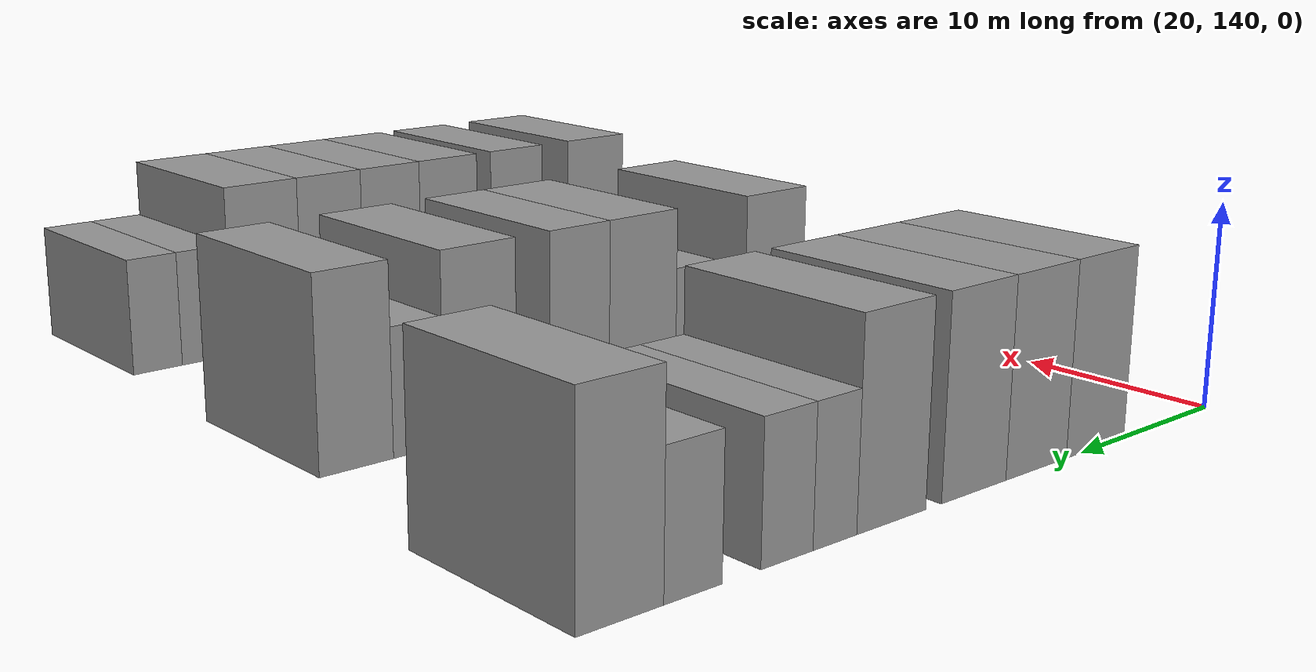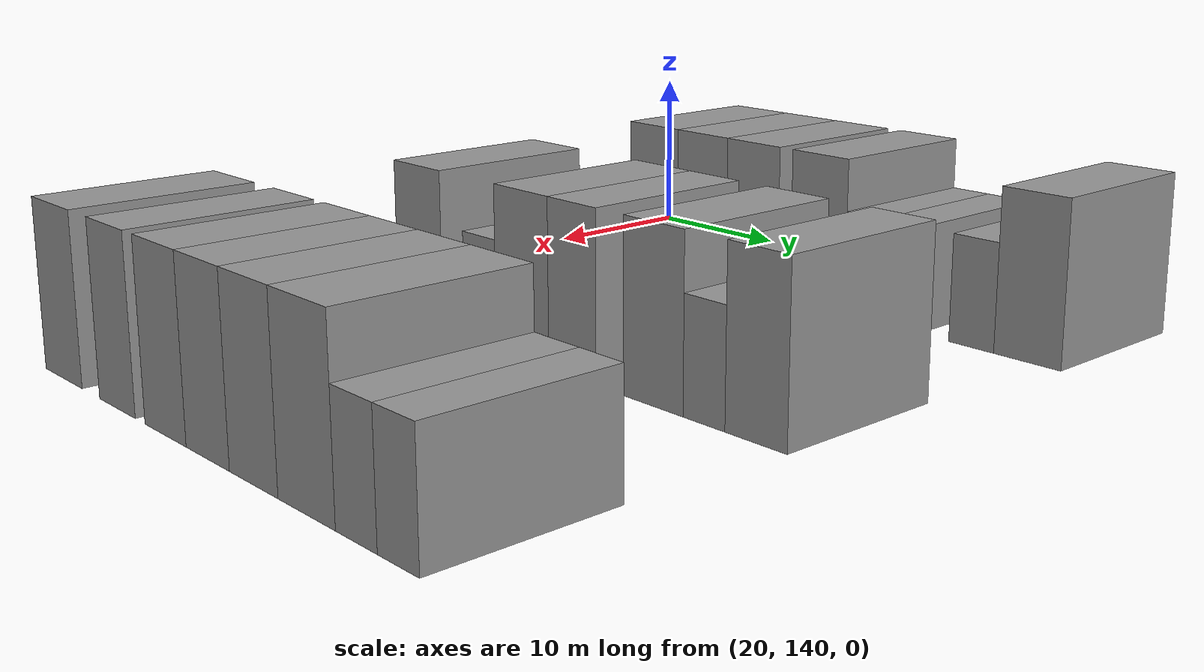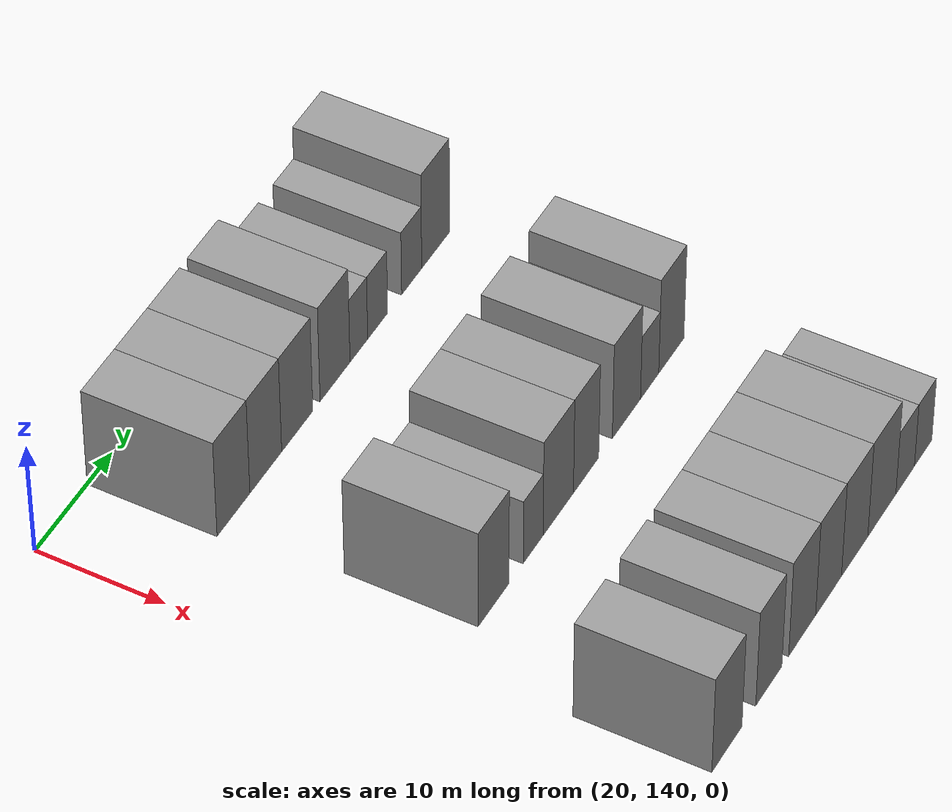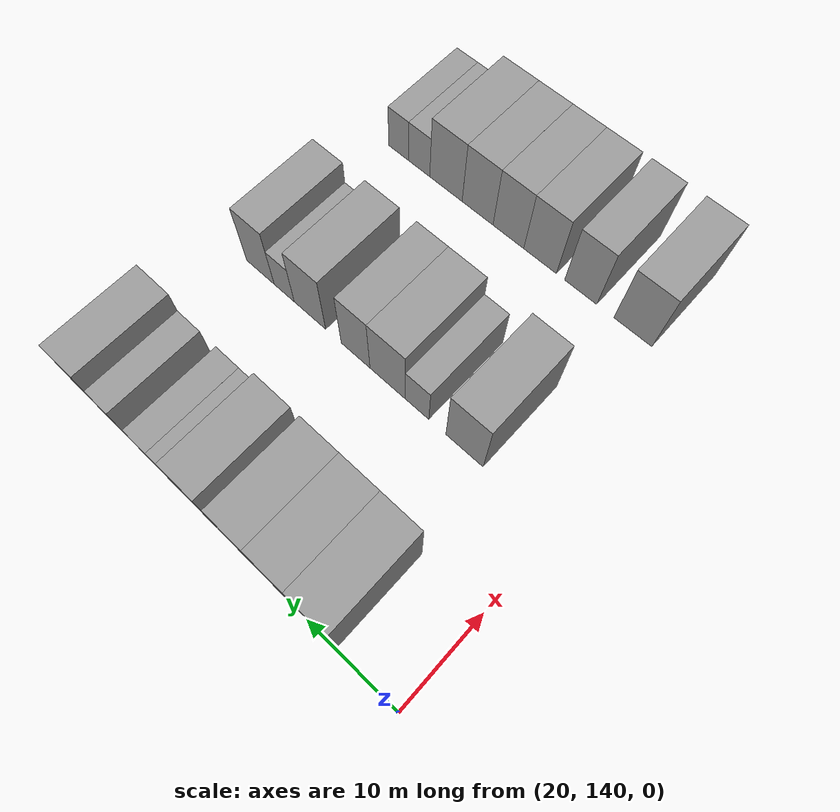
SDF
<sdf version="1.6">
 <world name="default">
  <model name="building_105">
   <static>1</static>
   <pose>25.0000 148.9333 0 0.000000 0.000000 0.000000</pose>
   <link name="link">
    <pose>0 0 4.50 0 0 0</pose>
    <collision name="collision"><geometry><box><size>10.0000 4.3901 9.0000</size></box></geometry></collision>
    <visual name="visual">
     <cast_shadows>0</cast_shadows>
     <geometry><box><size>10.0000 4.3901 9.0000</size></box></geometry>
     <material>
      <script>
       <uri>model://grey_wall/materials/scripts</uri>
       <uri>model://grey_wall/materials/textures</uri>
       <name>vrc/grey_wall</name>
      </script>
     </material>
    </visual>
   </link>
  </model>
  <model name="building_106">
   <static>1</static>
   <pose>25.0000 153.2803 0 0.000000 0.000000 0.000000</pose>
   <link name="link">
    <pose>0 0 4.50 0 0 0</pose>
    <collision name="collision"><geometry><box><size>10.0000 4.3039 9.0000</size></box></geometry></collision>
    <visual name="visual">
     <cast_shadows>0</cast_shadows>
     <geometry><box><size>10.0000 4.3039 9.0000</size></box></geometry>
     <material>
      <script>
       <uri>model://grey_wall/materials/scripts</uri>
       <uri>model://grey_wall/materials/textures</uri>
       <name>vrc/grey_wall</name>
      </script>
     </material>
    </visual>
   </link>
  </model>
  <model name="building_107">
   <static>1</static>
   <pose>25.0000 157.5645 0 0.000000 0.000000 0.000000</pose>
   <link name="link">
    <pose>0 0 4.50 0 0 0</pose>
    <collision name="collision"><geometry><box><size>10.0000 4.2645 9.0000</size></box></geometry></collision>
    <visual name="visual">
     <cast_shadows>0</cast_shadows>
     <geometry><box><size>10.0000 4.2645 9.0000</size></box></geometry>
     <material>
      <script>
       <uri>model://grey_wall/materials/scripts</uri>
       <uri>model://grey_wall/materials/textures</uri>
       <name>vrc/grey_wall</name>
      </script>
     </material>
    </visual>
   </link>
  </model>
  <model name="building_108">
   <static>1</static>
   <pose>25.0000 162.7860 0 0.000000 0.000000 0.000000</pose>
   <link name="link">
    <pose>0 0 4.50 0 0 0</pose>
    <collision name="collision"><geometry><box><size>10.0000 4.1785 9.0000</size></box></geometry></collision>
    <visual name="visual">
     <cast_shadows>0</cast_shadows>
     <geometry><box><size>10.0000 4.1785 9.0000</size></box></geometry>
     <material>
      <script>
       <uri>model://grey_wall/materials/scripts</uri>
       <uri>model://grey_wall/materials/textures</uri>
       <name>vrc/grey_wall</name>
      </script>
     </material>
    </visual>
   </link>
  </model>
  <model name="building_109">
   <static>1</static>
   <pose>25.0000 166.1207 0 0.000000 0.000000 0.000000</pose>
   <link name="link">
    <pose>0 0 3.00 0 0 0</pose>
    <collision name="collision"><geometry><box><size>10.0000 2.4908 6.0000</size></box></geometry></collision>
    <visual name="visual">
     <cast_shadows>0</cast_shadows>
     <geometry><box><size>10.0000 2.4908 6.0000</size></box></geometry>
     <material>
      <script>
       <uri>model://grey_wall/materials/scripts</uri>
       <uri>model://grey_wall/materials/textures</uri>
       <name>vrc/grey_wall</name>
      </script>
     </material>
    </visual>
   </link>
  </model>
  <model name="building_110">
   <static>1</static>
   <pose>25.0000 168.7797 0 0.000000 0.000000 0.000000</pose>
   <link name="link">
    <pose>0 0 3.00 0 0 0</pose>
    <collision name="collision"><geometry><box><size>10.0000 2.8271 6.0000</size></box></geometry></collision>
    <visual name="visual">
     <cast_shadows>0</cast_shadows>
     <geometry><box><size>10.0000 2.8271 6.0000</size></box></geometry>
     <material>
      <script>
       <uri>model://grey_wall/materials/scripts</uri>
       <uri>model://grey_wall/materials/textures</uri>
       <name>vrc/grey_wall</name>
      </script>
     </material>
    </visual>
   </link>
  </model>
  <model name="building_111">
   <static>1</static>
   <pose>25.0000 173.6369 0 0.000000 0.000000 0.000000</pose>
   <link name="link">
    <pose>0 0 3.00 0 0 0</pose>
    <collision name="collision"><geometry><box><size>10.0000 2.8874 6.0000</size></box></geometry></collision>
    <visual name="visual">
     <cast_shadows>0</cast_shadows>
     <geometry><box><size>10.0000 2.8874 6.0000</size></box></geometry>
     <material>
      <script>
       <uri>model://grey_wall/materials/scripts</uri>
       <uri>model://grey_wall/materials/textures</uri>
       <name>vrc/grey_wall</name>
      </script>
     </material>
    </visual>
   </link>
  </model>
  <model name="building_112">
   <static>1</static>
   <pose>25.0000 177.1193 0 0.000000 0.000000 0.000000</pose>
   <link name="link">
    <pose>0 0 4.50 0 0 0</pose>
    <collision name="collision"><geometry><box><size>10.0000 4.0774 9.0000</size></box></geometry></collision>
    <visual name="visual">
     <cast_shadows>0</cast_shadows>
     <geometry><box><size>10.0000 4.0774 9.0000</size></box></geometry>
     <material>
      <script>
       <uri>model://grey_wall/materials/scripts</uri>
       <uri>model://grey_wall/materials/textures</uri>
       <name>vrc/grey_wall</name>
      </script>
     </material>
    </visual>
   </link>
  </model>
  <model name="building_215">
   <static>1</static>
   <pose>44.0000 150.0126 0 0.000000 0.000000 0.000000</pose>
   <link name="link">
    <pose>0 0 4.50 0 0 0</pose>
    <collision name="collision"><geometry><box><size>10.0000 4.2839 9.0000</size></box></geometry></collision>
    <visual name="visual">
     <cast_shadows>0</cast_shadows>
     <geometry><box><size>10.0000 4.2839 9.0000</size></box></geometry>
     <material>
      <script>
       <uri>model://grey_wall/materials/scripts</uri>
       <uri>model://grey_wall/materials/textures</uri>
       <name>vrc/grey_wall</name>
      </script>
     </material>
    </visual>
   </link>
  </model>
  <model name="building_216">
   <static>1</static>
   <pose>44.0000 155.5559 0 0.000000 0.000000 0.000000</pose>
   <link name="link">
    <pose>0 0 3.00 0 0 0</pose>
    <collision name="collision"><geometry><box><size>10.0000 2.8028 6.0000</size></box></geometry></collision>
    <visual name="visual">
     <cast_shadows>0</cast_shadows>
     <geometry><box><size>10.0000 2.8028 6.0000</size></box></geometry>
     <material>
      <script>
       <uri>model://grey_wall/materials/scripts</uri>
       <uri>model://grey_wall/materials/textures</uri>
       <name>vrc/grey_wall</name>
      </script>
     </material>
    </visual>
   </link>
  </model>
  <model name="building_217">
   <static>1</static>
   <pose>44.0000 159.1322 0 0.000000 0.000000 0.000000</pose>
   <link name="link">
    <pose>0 0 4.50 0 0 0</pose>
    <collision name="collision"><geometry><box><size>10.0000 4.3497 9.0000</size></box></geometry></collision>
    <visual name="visual">
     <cast_shadows>0</cast_shadows>
     <geometry><box><size>10.0000 4.3497 9.0000</size></box></geometry>
     <material>
      <script>
       <uri>model://grey_wall/materials/scripts</uri>
       <uri>model://grey_wall/materials/textures</uri>
       <name>vrc/grey_wall</name>
      </script>
     </material>
    </visual>
   </link>
  </model>
  <model name="building_218">
   <static>1</static>
   <pose>44.0000 163.1326 0 0.000000 0.000000 0.000000</pose>
   <link name="link">
    <pose>0 0 4.50 0 0 0</pose>
    <collision name="collision"><geometry><box><size>10.0000 3.6511 9.0000</size></box></geometry></collision>
    <visual name="visual">
     <cast_shadows>0</cast_shadows>
     <geometry><box><size>10.0000 3.6511 9.0000</size></box></geometry>
     <material>
      <script>
       <uri>model://grey_wall/materials/scripts</uri>
       <uri>model://grey_wall/materials/textures</uri>
       <name>vrc/grey_wall</name>
      </script>
     </material>
    </visual>
   </link>
  </model>
  <model name="building_219">
   <static>1</static>
   <pose>44.0000 169.0336 0 0.000000 0.000000 0.000000</pose>
   <link name="link">
    <pose>0 0 4.50 0 0 0</pose>
    <collision name="collision"><geometry><box><size>10.0000 4.1509 9.0000</size></box></geometry></collision>
    <visual name="visual">
     <cast_shadows>0</cast_shadows>
     <geometry><box><size>10.0000 4.1509 9.0000</size></box></geometry>
     <material>
      <script>
       <uri>model://grey_wall/materials/scripts</uri>
       <uri>model://grey_wall/materials/textures</uri>
       <name>vrc/grey_wall</name>
      </script>
     </material>
    </visual>
   </link>
  </model>
  <model name="building_220">
   <static>1</static>
   <pose>44.0000 172.4661 0 0.000000 0.000000 0.000000</pose>
   <link name="link">
    <pose>0 0 3.00 0 0 0</pose>
    <collision name="collision"><geometry><box><size>10.0000 2.7141 6.0000</size></box></geometry></collision>
    <visual name="visual">
     <cast_shadows>0</cast_shadows>
     <geometry><box><size>10.0000 2.7141 6.0000</size></box></geometry>
     <material>
      <script>
       <uri>model://grey_wall/materials/scripts</uri>
       <uri>model://grey_wall/materials/textures</uri>
       <name>vrc/grey_wall</name>
      </script>
     </material>
    </visual>
   </link>
  </model>
  <model name="building_221">
   <static>1</static>
   <pose>44.0000 175.7216 0 0.000000 0.000000 0.000000</pose>
   <link name="link">
    <pose>0 0 4.50 0 0 0</pose>
    <collision name="collision"><geometry><box><size>10.0000 3.7969 9.0000</size></box></geometry></collision>
    <visual name="visual">
     <cast_shadows>0</cast_shadows>
     <geometry><box><size>10.0000 3.7969 9.0000</size></box></geometry>
     <material>
      <script>
       <uri>model://grey_wall/materials/scripts</uri>
       <uri>model://grey_wall/materials/textures</uri>
       <name>vrc/grey_wall</name>
      </script>
     </material>
    </visual>
   </link>
  </model>
  <model name="building_336">
   <static>1</static>
   <pose>63.0000 146.1378 0 0.000000 0.000000 0.000000</pose>
   <link name="link">
    <pose>0 0 4.50 0 0 0</pose>
    <collision name="collision"><geometry><box><size>10.0000 4.3176 9.0000</size></box></geometry></collision>
    <visual name="visual">
     <cast_shadows>0</cast_shadows>
     <geometry><box><size>10.0000 4.3176 9.0000</size></box></geometry>
     <material>
      <script>
       <uri>model://grey_wall/materials/scripts</uri>
       <uri>model://grey_wall/materials/textures</uri>
       <name>vrc/grey_wall</name>
      </script>
     </material>
    </visual>
   </link>
  </model>
  <model name="building_337">
   <static>1</static>
   <pose>63.0000 152.2011 0 0.000000 0.000000 0.000000</pose>
   <link name="link">
    <pose>0 0 4.50 0 0 0</pose>
    <collision name="collision"><geometry><box><size>10.0000 3.8091 9.0000</size></box></geometry></collision>
    <visual name="visual">
     <cast_shadows>0</cast_shadows>
     <geometry><box><size>10.0000 3.8091 9.0000</size></box></geometry>
     <material>
      <script>
       <uri>model://grey_wall/materials/scripts</uri>
       <uri>model://grey_wall/materials/textures</uri>
       <name>vrc/grey_wall</name>
      </script>
     </material>
    </visual>
   </link>
  </model>
  <model name="building_338">
   <static>1</static>
   <pose>63.0000 157.1078 0 0.000000 0.000000 0.000000</pose>
   <link name="link">
    <pose>0 0 4.50 0 0 0</pose>
    <collision name="collision"><geometry><box><size>10.0000 4.0045 9.0000</size></box></geometry></collision>
    <visual name="visual">
     <cast_shadows>0</cast_shadows>
     <geometry><box><size>10.0000 4.0045 9.0000</size></box></geometry>
     <material>
      <script>
       <uri>model://grey_wall/materials/scripts</uri>
       <uri>model://grey_wall/materials/textures</uri>
       <name>vrc/grey_wall</name>
      </script>
     </material>
    </visual>
   </link>
  </model>
  <model name="building_339">
   <static>1</static>
   <pose>63.0000 161.0529 0 0.000000 0.000000 0.000000</pose>
   <link name="link">
    <pose>0 0 4.50 0 0 0</pose>
    <collision name="collision"><geometry><box><size>10.0000 3.8857 9.0000</size></box></geometry></collision>
    <visual name="visual">
     <cast_shadows>0</cast_shadows>
     <geometry><box><size>10.0000 3.8857 9.0000</size></box></geometry>
     <material>
      <script>
       <uri>model://grey_wall/materials/scripts</uri>
       <uri>model://grey_wall/materials/textures</uri>
       <name>vrc/grey_wall</name>
      </script>
     </material>
    </visual>
   </link>
  </model>
  <model name="building_340">
   <static>1</static>
   <pose>63.0000 164.9989 0 0.000000 0.000000 0.000000</pose>
   <link name="link">
    <pose>0 0 4.50 0 0 0</pose>
    <collision name="collision"><geometry><box><size>10.0000 4.0062 9.0000</size></box></geometry></collision>
    <visual name="visual">
     <cast_shadows>0</cast_shadows>
     <geometry><box><size>10.0000 4.0062 9.0000</size></box></geometry>
     <material>
      <script>
       <uri>model://grey_wall/materials/scripts</uri>
       <uri>model://grey_wall/materials/textures</uri>
       <name>vrc/grey_wall</name>
      </script>
     </material>
    </visual>
   </link>
  </model>
  <model name="building_341">
   <static>1</static>
   <pose>63.0000 169.1610 0 0.000000 0.000000 0.000000</pose>
   <link name="link">
    <pose>0 0 4.50 0 0 0</pose>
    <collision name="collision"><geometry><box><size>10.0000 4.3179 9.0000</size></box></geometry></collision>
    <visual name="visual">
     <cast_shadows>0</cast_shadows>
     <geometry><box><size>10.0000 4.3179 9.0000</size></box></geometry>
     <material>
      <script>
       <uri>model://grey_wall/materials/scripts</uri>
       <uri>model://grey_wall/materials/textures</uri>
       <name>vrc/grey_wall</name>
      </script>
     </material>
    </visual>
   </link>
  </model>
  <model name="building_342">
   <static>1</static>
   <pose>63.0000 172.7662 0 0.000000 0.000000 0.000000</pose>
   <link name="link">
    <pose>0 0 3.00 0 0 0</pose>
    <collision name="collision"><geometry><box><size>10.0000 2.8925 6.0000</size></box></geometry></collision>
    <visual name="visual">
     <cast_shadows>0</cast_shadows>
     <geometry><box><size>10.0000 2.8925 6.0000</size></box></geometry>
     <material>
      <script>
       <uri>model://grey_wall/materials/scripts</uri>
       <uri>model://grey_wall/materials/textures</uri>
       <name>vrc/grey_wall</name>
      </script>
     </material>
    </visual>
   </link>
  </model>
  <model name="building_343">
   <static>1</static>
   <pose>63.0000 175.5756 0 0.000000 0.000000 0.000000</pose>
   <link name="link">
    <pose>0 0 3.00 0 0 0</pose>
    <collision name="collision"><geometry><box><size>10.0000 2.7263 6.0000</size></box></geometry></collision>
    <visual name="visual">
     <cast_shadows>0</cast_shadows>
     <geometry><box><size>10.0000 2.7263 6.0000</size></box></geometry>
     <material>
      <script>
       <uri>model://grey_wall/materials/scripts</uri>
       <uri>model://grey_wall/materials/textures</uri>
       <name>vrc/grey_wall</name>
      </script>
     </material>
    </visual>
   </link>
  </model>
 </world>
</sdf>
